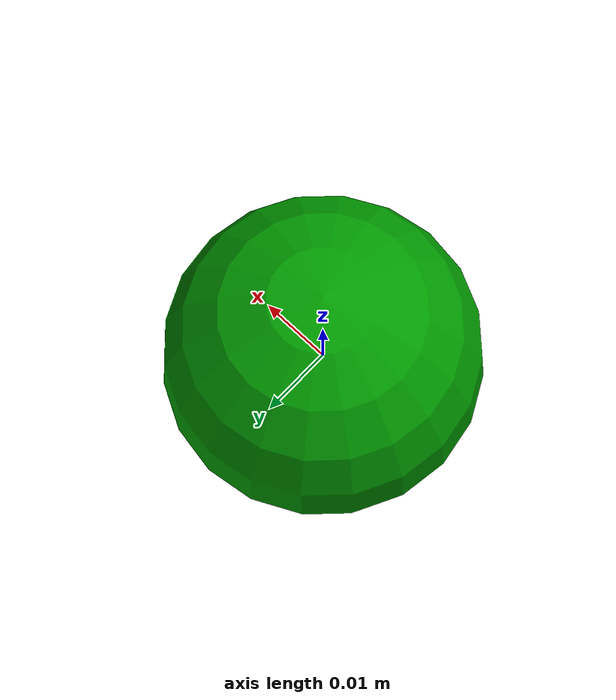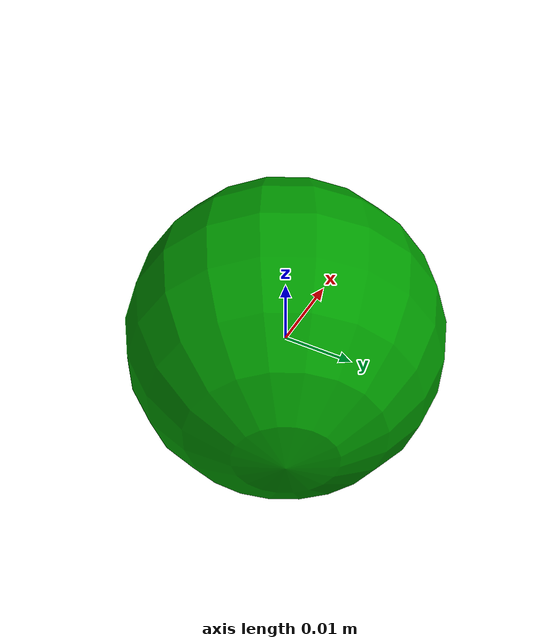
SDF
<?xml version="1.0" encoding="UTF-8"?>
<!-- |    This document was autogenerated by xacro4sdf from model.sdf.xacro            | -->
<!-- |    EDITING THIS FILE BY HAND IS NOT RECOMMENDED                                 | -->
<sdf version="1.7">
	<model name="rm_projectile_42mm">
		<link name="rm_projectile_42mm">
			<inertial>
				<mass>0.041</mass>
				<inertia>
					<ixx>7.2324e-06</ixx>
					<ixy>0</ixy>
					<ixz>0</ixz>
					<iyy>7.2324e-06</iyy>
					<iyz>0</iyz>
					<izz>7.2324e-06</izz>
				</inertia>
			</inertial>
			<visual name="visual">
				<geometry>
					<sphere>
						<radius>0.021</radius>
					</sphere>
				</geometry>
				<material>
					<ambient>0 0.6 0 1</ambient>
					<diffuse>0 0.6 0 1</diffuse>
					<specular>1 1 1 1</specular>
					<emissive>0 0.6 0 1 1</emissive>
				</material>
			</visual>
			<collision name="collision">
				<geometry>
					<sphere>
						<radius>0.021</radius>
					</sphere>
				</geometry>
			</collision>
		</link>
	</model>
</sdf>
